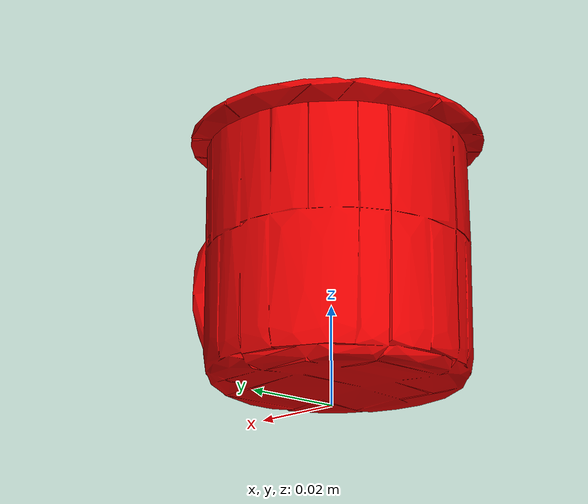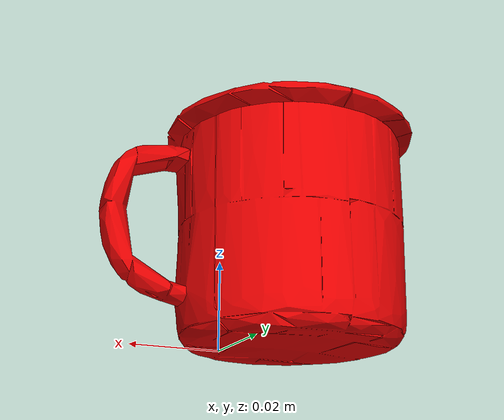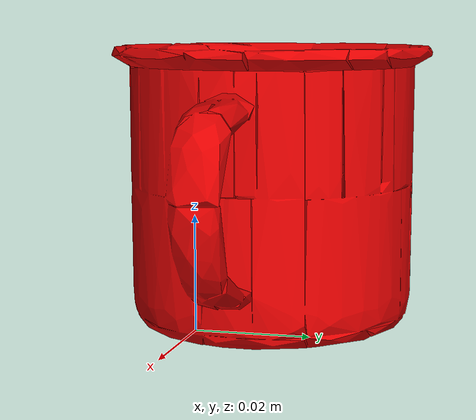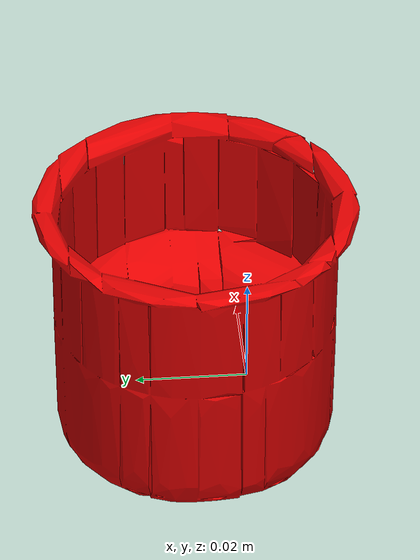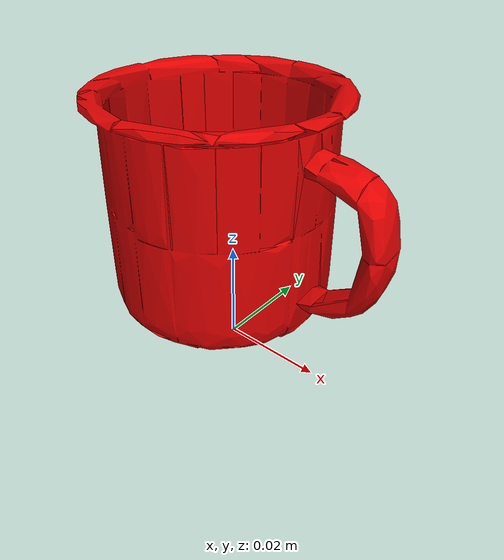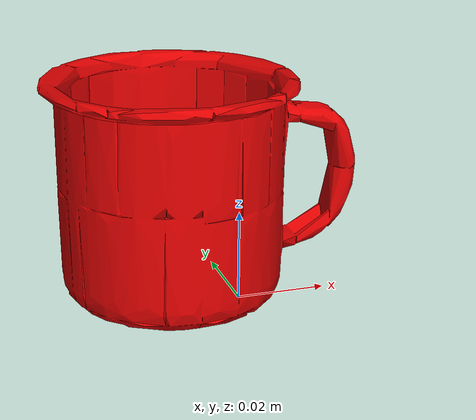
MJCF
<mujoco model="mug">
  <asset>
    <mesh file="meshes/mug.stl" name="mug_mesh" scale="0.6 0.6 0.6"/>
    <texture file="../textures/can.png" name="tex-mug"/>
    <material name="coke" reflectance="0.7" texrepeat="5 5" texture="tex-mug" texuniform="true"/>
  </asset>
  <worldbody>
    <body>
      <body name="collision">
        <geom pos="0 0 0" mesh="mug_mesh" type="mesh" solimp="0.998 0.998 0.001" solref="0.001 1" density="100" friction="0.95 0.3 0.1" rgba="0.878 0 0 1" group="1" condim="4"/>
      </body>
      <body name="visual">
        <geom pos="0 0 0" mesh="mug_mesh" type="mesh" rgba="0.878 0 0 1" conaffinity="0" contype="0" group="0" mass="0.0001"/>
        <geom pos="0 0 0" mesh="mug_mesh" type="mesh" rgba="0.878 0 0 1" conaffinity="0" contype="0" group="1" mass="0.0001"/>
      </body>
      <site rgba="0 0 0 0" size="0.005" pos="0 0 -0.06" name="bottom_site"/>
      <site rgba="0 0 0 0" size="0.005" pos="0 0 0" name="top_site"/>
      <site rgba="0 0 0 0" size="0.005" pos="0.025 0.025 0" name="horizontal_radius_site"/>
    </body>
  </worldbody>
</mujoco>
